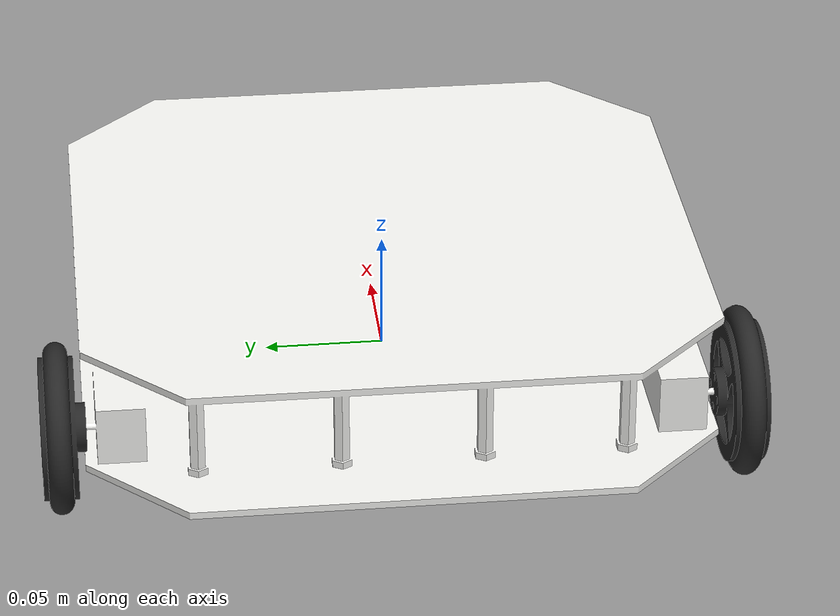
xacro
<?xml version="1.0"?>
<robot xmlns:xacro="http://www.ros.org/wiki/xacro" name="testbot">

  <xacro:arg name="use_sim" default="false"/>
  <xacro:arg name="prefix"  default=""/>
  <!-- use_control is set by rsp.launch.py: true once the controller files
       (urdf/testbot.ros2_control.xacro + config/ros2_controllers.yaml)
       have been added to the package. -->
  <xacro:arg name="use_control" default="false"/>
  <xacro:property name="use_sim" value="$(arg use_sim)"/>
  <xacro:property name="prefix"  value="$(arg prefix)"/>

  <!-- Materials (shared across all assemblies) -->
  <material name="ABS_Plastic">
    <color rgba="0.965 0.965 0.953 1.0"/>
  </material>
  <material name="Rubber_Black">
    <color rgba="0.153 0.153 0.153 1.0"/>
  </material>

  <!-- Assembly includes -->
  <xacro:include filename="$(find testbot_description)/urdf/assemblies/testbot.urdf.xacro"/>

  <!-- MANUAL EDIT (not from fusion2URDF): sim-only additions -->
  <xacro:if value="$(arg use_control)">
    <xacro:include filename="$(find testbot_description)/urdf/testbot.ros2_control.xacro"/>
  </xacro:if>
  <xacro:include filename="$(find testbot_description)/urdf/testbot.gazebo.xacro"/>
  <xacro:include filename="$(find testbot_description)/urdf/testbot.sensors.xacro"/>

  <!-- Instantiate assemblies -->
  <xacro:testbot prefix="${prefix}"/>

  <xacro:if value="$(arg use_control)">
    <xacro:testbot_ros2_control prefix="${prefix}" use_sim="${use_sim}"/>
  </xacro:if>

  <xacro:if value="${use_sim}">
    <xacro:testbot_gazebo  prefix="${prefix}"/>
    <xacro:testbot_sensors prefix="${prefix}"/>
  </xacro:if>

</robot>

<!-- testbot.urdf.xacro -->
<robot xmlns:xacro="http://www.ros.org/wiki/xacro" name="testbot_macro">

  <xacro:macro name="testbot" params="prefix">

    <xacro:property name="wheel_radius" value="0.035"/>
    <xacro:property name="wheel_width"  value="0.0182"/>
    <!-- Wheel mesh runs 0 .. wheel_width along the link's +z (the joint axis),
         so the collision cylinder is centred half a width along +z. -->
    <xacro:property name="wheel_collision_z" value="0.0091"/>
    <!-- Wheel bottom in base_link: 0.0155 - 0.035 -->
    <xacro:property name="wheel_bottom_z" value="-0.0195"/>
    <xacro:property name="caster_radius"  value="0.005"/>
    <xacro:property name="caster_x"       value="0.09"/>

    <!-- Links -->
    <link name="${prefix}base_link">
      <inertial>
        <origin xyz="-0.006374 -0.000113 0.026555" rpy="0 0 0"/>
        <mass value="0.480795"/>
        <inertia ixx="3.173460e-03" ixy="3.454263e-07" ixz="-2.969094e-05"
                 iyy="2.788824e-03" iyz="5.819429e-09" izz="5.353183e-03"/>
      </inertial>
      <visual>
        <origin xyz="0.000000 0.000000 0.000000" rpy="0.000000 0.000000 0.000000"/>
        <geometry>
          <mesh filename="package://testbot_description/meshes/testbot/base_link.dae" scale="1 1 1"/>
        </geometry>
        <material name="ABS_Plastic"/>
      </visual>

      <collision>
        <origin xyz="0 0 0.028" rpy="0 0 0"/>
        <geometry>
          <box size="0.26 0.26 0.056"/>
        </geometry>
      </collision>

      <collision>
        <origin xyz="${caster_x} 0 ${wheel_bottom_z + caster_radius}" rpy="0 0 0"/>
        <geometry>
          <sphere radius="${caster_radius}"/>
        </geometry>
      </collision>
    </link>

    <link name="${prefix}backward_left_wheel">
      <inertial>
        <origin xyz="-0.000000 0.000000 0.010783" rpy="0 0 0"/>
        <mass value="0.033729"/>
        <inertia ixx="1.081155e-05" ixy="-1.107598e-09" ixz="0.000000e+00"
                 iyy="1.076694e-05" iyz="0.000000e+00" izz="2.045865e-05"/>
      </inertial>
      <visual>
        <origin xyz="0.000000 0.000000 0.015200" rpy="1.570796 0.000000 0.000000"/>
        <geometry>
          <mesh filename="package://testbot_description/meshes/testbot/backward_left_wheel.dae" scale="1 1 1"/>
        </geometry>
        <material name="Rubber_Black"/>
      </visual>
      <collision>
        <origin xyz="0 0 ${wheel_collision_z}" rpy="0 0 0"/>
        <geometry>
          <cylinder radius="${wheel_radius}" length="${wheel_width}"/>
        </geometry>
      </collision>
    </link>

    <link name="${prefix}Backward_Right_wheel">
      <inertial>
        <origin xyz="-0.000000 0.000000 0.010783" rpy="0 0 0"/>
        <mass value="0.033729"/>
        <inertia ixx="1.081155e-05" ixy="1.107598e-09" ixz="0.000000e+00"
                 iyy="1.076694e-05" iyz="0.000000e+00" izz="2.045865e-05"/>
      </inertial>
      <visual>
        <origin xyz="0.000000 0.000000 0.015200" rpy="1.570796 0.000000 0.000000"/>
        <geometry>
          <mesh filename="package://testbot_description/meshes/testbot/Backward_Right_wheel.dae" scale="1 1 1"/>
        </geometry>
        <material name="Rubber_Black"/>
      </visual>
      <!-- MANUAL EDIT (not from fusion2URDF): see left wheel. -->
      <collision>
        <origin xyz="0 0 ${wheel_collision_z}" rpy="0 0 0"/>
        <geometry>
          <cylinder radius="${wheel_radius}" length="${wheel_width}"/>
        </geometry>
      </collision>
    </link>

    <!-- Joints (internal to assembly) -->
    <joint name="${prefix}Revolute_2" type="continuous">
      <parent link="${prefix}base_link"/>
      <child link="${prefix}backward_left_wheel"/>
      <origin xyz="-0.081000 0.129000 0.015500" rpy="-1.570796 0.000000 0.000000"/>
      <axis xyz="0.000000 0.000000 1.000000"/>
      <limit effort="1.5" velocity="30.0"/>
    </joint>

    <joint name="${prefix}Revolute_4" type="continuous">
      <parent link="${prefix}base_link"/>
      <child link="${prefix}Backward_Right_wheel"/>
      <origin xyz="-0.081000 -0.129000 0.015500" rpy="1.570796 0.000000 0.000000"/>
      <axis xyz="0.000000 0.000000 -1.000000"/>
      <!-- MANUAL EDIT (not from fusion2URDF): see left wheel. -->
      <limit effort="1.5" velocity="30.0"/>
    </joint>

  </xacro:macro>

</robot>
